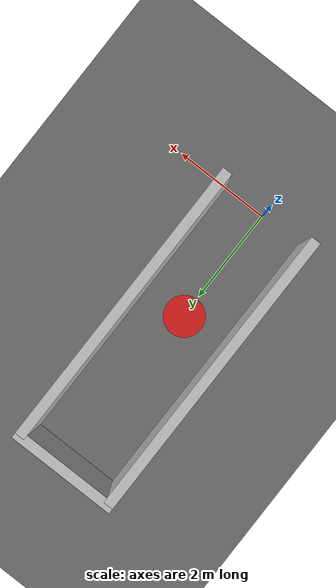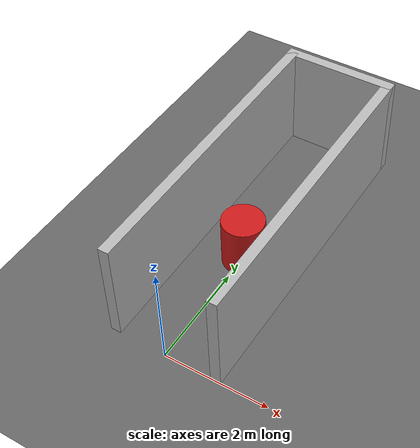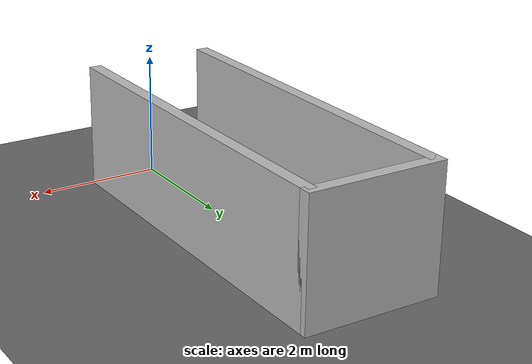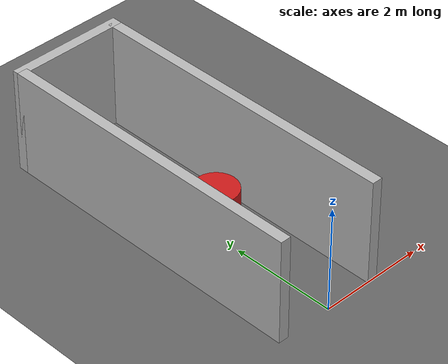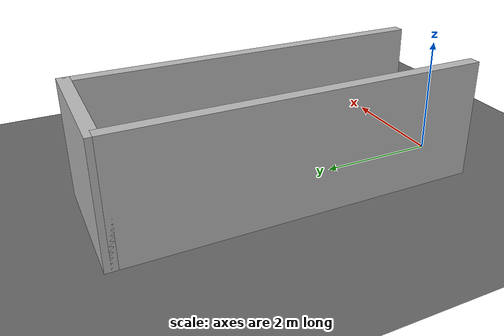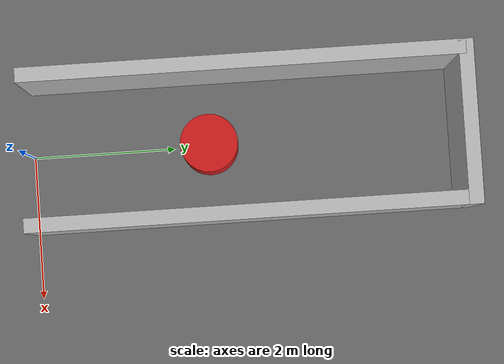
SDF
<?xml version="1.0" ?>
<sdf version="1.8">
  <world name="failure_test">
    <physics name="1ms" type="ignored"><max_step_size>0.001</max_step_size><real_time_factor>1.0</real_time_factor></physics>
    <plugin filename="libignition-gazebo-physics-system.so" name="ignition::gazebo::systems::Physics"/>
    <plugin filename="libignition-gazebo-scene-broadcaster-system.so" name="ignition::gazebo::systems::SceneBroadcaster"/>
    <plugin filename="libignition-gazebo-user-commands-system.so" name="ignition::gazebo::systems::UserCommands"/>
    <plugin filename="libignition-gazebo-sensors-system.so" name="ignition::gazebo::systems::Sensors"><render_engine>ogre</render_engine></plugin>
    <plugin filename="libignition-gazebo-imu-system.so" name="ignition::gazebo::systems::Imu"/>

    <light type="directional" name="dim_sun"><cast_shadows>true</cast_shadows><pose>0 0 10 0 0 0</pose><diffuse>0.3 0.3 0.3 1</diffuse><specular>0.1 0.1 0.1 1</specular><direction>-0.5 0.1 -0.9</direction></light>
    <model name="ground_plane"><static>true</static><link name="link"><collision name="c"><geometry><plane><normal>0 0 1</normal><size>40 40</size></plane></geometry></collision><visual name="v"><geometry><plane><normal>0 0 1</normal><size>40 40</size></plane></geometry><material><ambient>0.4 0.4 0.4 1</ambient><diffuse>0.4 0.4 0.4 1</diffuse></material></visual></link></model>

    <!-- Dead-end trap corridor to force recovery behaviors -->
    <model name="dead_end_left"><static>true</static><pose>-1.0 3.0 1 0 0 0</pose><link name="l"><collision name="c"><geometry><box><size>0.2 6 2</size></box></geometry></collision><visual name="v"><geometry><box><size>0.2 6 2</size></box></geometry></visual></link></model>
    <model name="dead_end_right"><static>true</static><pose>1.0 3.0 1 0 0 0</pose><link name="l"><collision name="c"><geometry><box><size>0.2 6 2</size></box></geometry></collision><visual name="v"><geometry><box><size>0.2 6 2</size></box></geometry></visual></link></model>
    <model name="dead_end_cap"><static>true</static><pose>0.0 6.0 1 0 0 0</pose><link name="l"><collision name="c"><geometry><box><size>2.2 0.2 2</size></box></geometry></collision><visual name="v"><geometry><box><size>2.2 0.2 2</size></box></geometry></visual></link></model>

    <!-- Occlusion blocks for sensor dropout tests -->
    <model name="occlusion_pillar_1"><static>true</static><pose>0.0 2.5 0.5 0 0 0</pose><link name="l"><collision name="c"><geometry><cylinder><radius>0.4</radius><length>1.0</length></cylinder></geometry></collision><visual name="v"><geometry><cylinder><radius>0.4</radius><length>1.0</length></cylinder></geometry><material><ambient>0.8 0.1 0.1 1</ambient><diffuse>0.8 0.1 0.1 1</diffuse></material></visual></link></model>
  </world>
</sdf>
